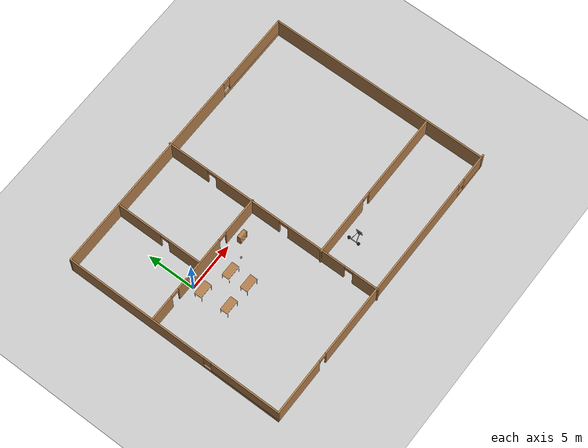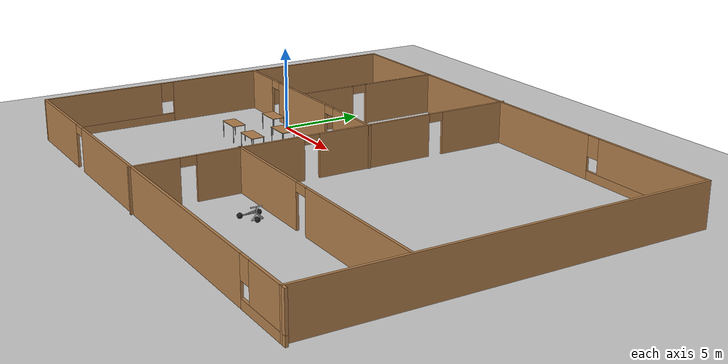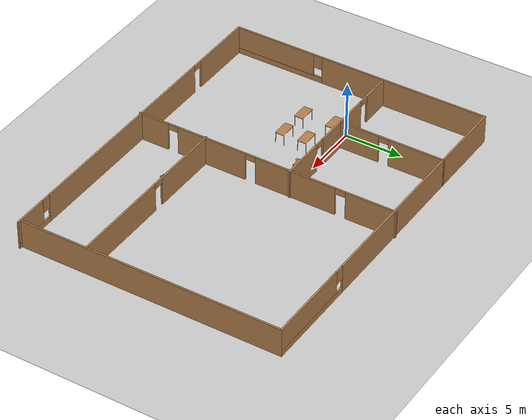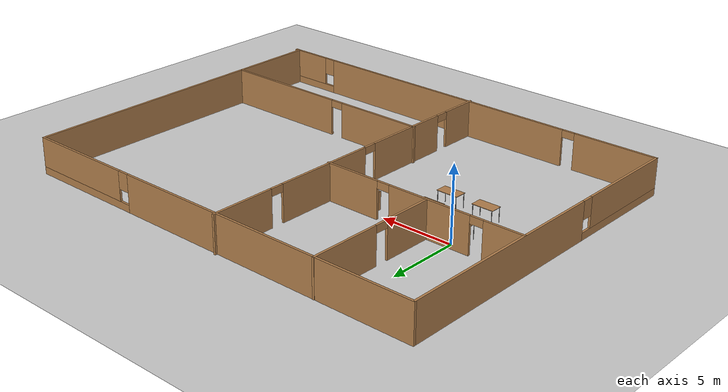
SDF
<sdf version="1.6">
 <world name="default">
  <plugin name="welcome" filename="libwelcome.so"/>
  <light name="sun" type="directional">
   <pose>0 0 10 0 -0 0</pose>
   <diffuse>0.8 0.8 0.8 1</diffuse>
   <specular>0.2 0.2 0.2 1</specular>
   <attenuation>
    <range>1000</range>
    <constant>0.9</constant>
    <linear>0.01</linear>
    <quadratic>0.001</quadratic>
   </attenuation>
   <direction>-0.5 0.1 -0.9</direction>
  </light>
  <model name="ground_plane">
   <static>1</static>
   <link name="link">
    <collision name="collision">
     <geometry><plane><normal>0 0 1</normal><size>100 100</size></plane></geometry>
     <surface>
      <contact><collide_bitmask>65535</collide_bitmask></contact>
      <friction><ode><mu>100</mu><mu2>50</mu2></ode></friction>
     </surface>
    </collision>
    <visual name="visual">
     <cast_shadows>0</cast_shadows>
     <geometry><plane><normal>0 0 1</normal><size>100 100</size></plane></geometry>
     <material>
      <script><uri>file://media/materials/scripts/gazebo.material</uri><name>Gazebo/Grey</name></script>
     </material>
    </visual>
   </link>
  </model>
  <gravity>0 0 -9.8</gravity>
  <magnetic_field>6e-06 2.3e-05 -4.2e-05</magnetic_field>
  <atmosphere type="adiabatic"/>
  <physics name="default_physics" default="0" type="ode">
   <max_step_size>0.001</max_step_size>
   <real_time_factor>1</real_time_factor>
   <real_time_update_rate>1000</real_time_update_rate>
  </physics>
  <scene><ambient>0.4 0.4 0.4 1</ambient><background>0.7 0.7 0.7 1</background><shadows>1</shadows></scene>
  <spherical_coordinates>
   <surface_model>EARTH_WGS84</surface_model>
   <latitude_deg>0</latitude_deg>
   <longitude_deg>0</longitude_deg>
   <elevation>0</elevation>
   <heading_deg>0</heading_deg>
  </spherical_coordinates>
  <model name="my_building_1">
   <pose>9.97426 -1.91633 0 0 -0 0</pose>
   <link name="Wall_1">
    <pose>-0.124999 11.4186 0 0 -0 0</pose>
    <visual name="Wall_1_Visual_0">
     <pose>-4.16407 0 1.25 0 -0 0</pose>
     <geometry><box><size>21.6719 0.15 2.5</size></box></geometry>
     <material>
      <script><uri>file://media/materials/scripts/gazebo.material</uri><name>Gazebo/Wood</name></script>
      <ambient>1 1 1 1</ambient>
     </material>
     <meta><layer>0</layer></meta>
    </visual>
    <collision name="Wall_1_Collision_0">
     <geometry><box><size>21.6719 0.15 2.5</size></box></geometry>
     <pose>-4.16407 0 1.25 0 -0 0</pose>
    </collision>
    <visual name="Wall_1_Visual_1">
     <pose>10.8359 0 0.25 0 -0 0</pose>
     <geometry><box><size>8.32814 0.15 0.5</size></box></geometry>
     <material>
      <script><uri>file://media/materials/scripts/gazebo.material</uri><name>Gazebo/Wood</name></script>
      <ambient>1 1 1 1</ambient>
     </material>
     <meta><layer>0</layer></meta>
    </visual>
    <collision name="Wall_1_Collision_1">
     <geometry><box><size>8.32814 0.15 0.5</size></box></geometry>
     <pose>10.8359 0 0.25 0 -0 0</pose>
    </collision>
    <visual name="Wall_1_Visual_2">
     <pose>11.2359 0 1.5 0 -0 0</pose>
     <geometry><box><size>7.52814 0.15 2</size></box></geometry>
     <material>
      <script><uri>file://media/materials/scripts/gazebo.material</uri><name>Gazebo/Wood</name></script>
      <ambient>1 1 1 1</ambient>
     </material>
     <meta><layer>0</layer></meta>
    </visual>
    <collision name="Wall_1_Collision_2">
     <geometry><box><size>7.52814 0.15 2</size></box></geometry>
     <pose>11.2359 0 1.5 0 -0 0</pose>
    </collision>
    <visual name="Wall_1_Visual_3">
     <pose>7.07186 0 1.9 0 -0 0</pose>
     <geometry><box><size>0.8 0.15 1.2</size></box></geometry>
     <material>
      <script><uri>file://media/materials/scripts/gazebo.material</uri><name>Gazebo/Wood</name></script>
      <ambient>1 1 1 1</ambient>
     </material>
     <meta><layer>0</layer></meta>
    </visual>
    <collision name="Wall_1_Collision_3">
     <geometry><box><size>0.8 0.15 1.2</size></box></geometry>
     <pose>7.07186 0 1.9 0 -0 0</pose>
    </collision>
   </link>
   <link name="Wall_11">
    <pose>-7.99391 2.26804 0 0 -0 0</pose>
    <visual name="Wall_11_Visual_0">
     <pose>-5.7544 0 1.25 0 -0 0</pose>
     <geometry><box><size>2.74119 0.15 2.5</size></box></geometry>
     <material>
      <script><uri>file://media/materials/scripts/gazebo.material</uri><name>Gazebo/Wood</name></script>
      <ambient>1 1 1 1</ambient>
     </material>
     <meta><layer>0</layer></meta>
    </visual>
    <collision name="Wall_11_Collision_0">
     <geometry><box><size>2.74119 0.15 2.5</size></box></geometry>
     <pose>-5.7544 0 1.25 0 -0 0</pose>
    </collision>
    <visual name="Wall_11_Visual_1">
     <pose>-0.602997 0 1.25 0 -0 0</pose>
     <geometry><box><size>5.76161 0.15 2.5</size></box></geometry>
     <material>
      <script><uri>file://media/materials/scripts/gazebo.material</uri><name>Gazebo/Wood</name></script>
      <ambient>1 1 1 1</ambient>
     </material>
     <meta><layer>0</layer></meta>
    </visual>
    <collision name="Wall_11_Collision_1">
     <geometry><box><size>5.76161 0.15 2.5</size></box></geometry>
     <pose>-0.602997 0 1.25 0 -0 0</pose>
    </collision>
    <visual name="Wall_11_Visual_2">
     <pose>5.1514 0 1.25 0 -0 0</pose>
     <geometry><box><size>3.94719 0.15 2.5</size></box></geometry>
     <material>
      <script><uri>file://media/materials/scripts/gazebo.material</uri><name>Gazebo/Wood</name></script>
      <ambient>1 1 1 1</ambient>
     </material>
     <meta><layer>0</layer></meta>
    </visual>
    <collision name="Wall_11_Collision_2">
     <geometry><box><size>3.94719 0.15 2.5</size></box></geometry>
     <pose>5.1514 0 1.25 0 -0 0</pose>
    </collision>
    <visual name="Wall_11_Visual_3">
     <pose>-3.9338 0 2.25 0 -0 0</pose>
     <geometry><box><size>0.9 0.15 0.5</size></box></geometry>
     <material>
      <script><uri>file://media/materials/scripts/gazebo.material</uri><name>Gazebo/Wood</name></script>
      <ambient>1 1 1 1</ambient>
     </material>
     <meta><layer>0</layer></meta>
    </visual>
    <collision name="Wall_11_Collision_3">
     <geometry><box><size>0.9 0.15 0.5</size></box></geometry>
     <pose>-3.9338 0 2.25 0 -0 0</pose>
    </collision>
    <visual name="Wall_11_Visual_4">
     <pose>2.72781 0 2.25 0 -0 0</pose>
     <geometry><box><size>0.9 0.15 0.5</size></box></geometry>
     <material>
      <script><uri>file://media/materials/scripts/gazebo.material</uri><name>Gazebo/Wood</name></script>
      <ambient>1 1 1 1</ambient>
     </material>
     <meta><layer>0</layer></meta>
    </visual>
    <collision name="Wall_11_Collision_4">
     <geometry><box><size>0.9 0.15 0.5</size></box></geometry>
     <pose>2.72781 0 2.25 0 -0 0</pose>
    </collision>
   </link>
   <link name="Wall_13">
    <pose>-8.44665 6.88983 0 0 0 -1.5708</pose>
    <visual name="Wall_13_Visual_0">
     <pose>-2.18561 0 1.25 0 -0 0</pose>
     <geometry><box><size>4.87878 0.15 2.5</size></box></geometry>
     <material>
      <script><uri>file://media/materials/scripts/gazebo.material</uri><name>Gazebo/Wood</name></script>
      <ambient>1 1 1 1</ambient>
     </material>
     <meta><layer>0</layer></meta>
    </visual>
    <collision name="Wall_13_Collision_0">
     <geometry><box><size>4.87878 0.15 2.5</size></box></geometry>
     <pose>-2.18561 0 1.25 0 -0 0</pose>
    </collision>
    <visual name="Wall_13_Visual_1">
     <pose>2.88939 0 1.25 0 -0 0</pose>
     <geometry><box><size>3.47122 0.15 2.5</size></box></geometry>
     <material>
      <script><uri>file://media/materials/scripts/gazebo.material</uri><name>Gazebo/Wood</name></script>
      <ambient>1 1 1 1</ambient>
     </material>
     <meta><layer>0</layer></meta>
    </visual>
    <collision name="Wall_13_Collision_1">
     <geometry><box><size>3.47122 0.15 2.5</size></box></geometry>
     <pose>2.88939 0 1.25 0 -0 0</pose>
    </collision>
    <visual name="Wall_13_Visual_2">
     <pose>0.703778 0 2.25 0 -0 0</pose>
     <geometry><box><size>0.9 0.15 0.5</size></box></geometry>
     <material>
      <script><uri>file://media/materials/scripts/gazebo.material</uri><name>Gazebo/Wood</name></script>
      <ambient>1 1 1 1</ambient>
     </material>
     <meta><layer>0</layer></meta>
    </visual>
    <collision name="Wall_13_Collision_2">
     <geometry><box><size>0.9 0.15 0.5</size></box></geometry>
     <pose>0.703778 0 2.25 0 -0 0</pose>
    </collision>
   </link>
   <link name="Wall_19">
    <pose>6.78661 -5.46813 0 0 -0 0</pose>
    <visual name="Wall_19_Visual_0">
     <pose>-4.88505 0 1.25 0 -0 0</pose>
     <geometry><box><size>6.22989 0.15 2.5</size></box></geometry>
     <material>
      <script><uri>file://media/materials/scripts/gazebo.material</uri><name>Gazebo/Wood</name></script>
      <ambient>1 1 1 1</ambient>
     </material>
     <meta><layer>0</layer></meta>
    </visual>
    <collision name="Wall_19_Collision_0">
     <geometry><box><size>6.22989 0.15 2.5</size></box></geometry>
     <pose>-4.88505 0 1.25 0 -0 0</pose>
    </collision>
    <visual name="Wall_19_Visual_1">
     <pose>3.56495 0 1.25 0 -0 0</pose>
     <geometry><box><size>8.87011 0.15 2.5</size></box></geometry>
     <material>
      <script><uri>file://media/materials/scripts/gazebo.material</uri><name>Gazebo/Wood</name></script>
      <ambient>1 1 1 1</ambient>
     </material>
     <meta><layer>0</layer></meta>
    </visual>
    <collision name="Wall_19_Collision_1">
     <geometry><box><size>8.87011 0.15 2.5</size></box></geometry>
     <pose>3.56495 0 1.25 0 -0 0</pose>
    </collision>
    <visual name="Wall_19_Visual_2">
     <pose>-1.32011 0 2.25 0 -0 0</pose>
     <geometry><box><size>0.9 0.15 0.5</size></box></geometry>
     <material>
      <script><uri>file://media/materials/scripts/gazebo.material</uri><name>Gazebo/Wood</name></script>
      <ambient>1 1 1 1</ambient>
     </material>
     <meta><layer>0</layer></meta>
    </visual>
    <collision name="Wall_19_Collision_2">
     <geometry><box><size>0.9 0.15 0.5</size></box></geometry>
     <pose>-1.32011 0 2.25 0 -0 0</pose>
    </collision>
   </link>
   <link name="Wall_3">
    <pose>-15.05 -0.006449 0 0 0 -1.5708</pose>
    <visual name="Wall_3_Visual_0">
     <pose>-4.05004 0 1.25 0 -0 0</pose>
     <geometry><box><size>14.8999 0.15 2.5</size></box></geometry>
     <material>
      <script><uri>file://media/materials/scripts/gazebo.material</uri><name>Gazebo/Wood</name></script>
      <ambient>1 1 1 1</ambient>
     </material>
     <meta><layer>0</layer></meta>
    </visual>
    <collision name="Wall_3_Collision_0">
     <geometry><box><size>14.8999 0.15 2.5</size></box></geometry>
     <pose>-4.05004 0 1.25 0 -0 0</pose>
    </collision>
    <visual name="Wall_3_Visual_1">
     <pose>7.44996 0 0.25 0 -0 0</pose>
     <geometry><box><size>8.10008 0.15 0.5</size></box></geometry>
     <material>
      <script><uri>file://media/materials/scripts/gazebo.material</uri><name>Gazebo/Wood</name></script>
      <ambient>1 1 1 1</ambient>
     </material>
     <meta><layer>0</layer></meta>
    </visual>
    <collision name="Wall_3_Collision_1">
     <geometry><box><size>8.10008 0.15 0.5</size></box></geometry>
     <pose>7.44996 0 0.25 0 -0 0</pose>
    </collision>
    <visual name="Wall_3_Visual_2">
     <pose>7.84996 0 1.5 0 -0 0</pose>
     <geometry><box><size>7.30008 0.15 2</size></box></geometry>
     <material>
      <script><uri>file://media/materials/scripts/gazebo.material</uri><name>Gazebo/Wood</name></script>
      <ambient>1 1 1 1</ambient>
     </material>
     <meta><layer>0</layer></meta>
    </visual>
    <collision name="Wall_3_Collision_2">
     <geometry><box><size>7.30008 0.15 2</size></box></geometry>
     <pose>7.84996 0 1.5 0 -0 0</pose>
    </collision>
    <visual name="Wall_3_Visual_3">
     <pose>3.79992 0 1.9 0 -0 0</pose>
     <geometry><box><size>0.8 0.15 1.2</size></box></geometry>
     <material>
      <script><uri>file://media/materials/scripts/gazebo.material</uri><name>Gazebo/Wood</name></script>
      <ambient>1 1 1 1</ambient>
     </material>
     <meta><layer>0</layer></meta>
    </visual>
    <collision name="Wall_3_Collision_3">
     <geometry><box><size>0.8 0.15 1.2</size></box></geometry>
     <pose>3.79992 0 1.9 0 -0 0</pose>
    </collision>
   </link>
   <link name="Wall_5">
    <collision name="Wall_5_Collision">
     <geometry><box><size>23 0.15 2.5</size></box></geometry>
     <pose>0 0 1.25 0 -0 0</pose>
    </collision>
    <visual name="Wall_5_Visual">
     <pose>0 0 1.25 0 -0 0</pose>
     <geometry><box><size>23 0.15 2.5</size></box></geometry>
     <material>
      <script><uri>file://media/materials/scripts/gazebo.material</uri><name>Gazebo/Wood</name></script>
      <ambient>1 1 1 1</ambient>
     </material>
     <meta><layer>0</layer></meta>
    </visual>
    <pose>14.8 -0.006449 0 0 0 -1.5708</pose>
   </link>
   <link name="Wall_7">
    <pose>1e-06 -11.4314 0 0 -0 0</pose>
    <visual name="Wall_7_Visual_0">
     <pose>-12.2247 0 1.25 0 -0 0</pose>
     <geometry><box><size>5.80053 0.15 2.5</size></box></geometry>
     <material>
      <script><uri>file://media/materials/scripts/gazebo.material</uri><name>Gazebo/Wood</name></script>
      <ambient>1 1 1 1</ambient>
     </material>
     <meta><layer>0</layer></meta>
    </visual>
    <collision name="Wall_7_Collision_0">
     <geometry><box><size>5.80053 0.15 2.5</size></box></geometry>
     <pose>-12.2247 0 1.25 0 -0 0</pose>
    </collision>
    <visual name="Wall_7_Visual_1">
     <pose>1.42052 0 1.25 0 -0 0</pose>
     <geometry><box><size>19.69 0.15 2.5</size></box></geometry>
     <material>
      <script><uri>file://media/materials/scripts/gazebo.material</uri><name>Gazebo/Wood</name></script>
      <ambient>1 1 1 1</ambient>
     </material>
     <meta><layer>0</layer></meta>
    </visual>
    <collision name="Wall_7_Collision_1">
     <geometry><box><size>19.69 0.15 2.5</size></box></geometry>
     <pose>1.42052 0 1.25 0 -0 0</pose>
    </collision>
    <visual name="Wall_7_Visual_2">
     <pose>13.1953 0 0.25 0 -0 0</pose>
     <geometry><box><size>3.85949 0.15 0.5</size></box></geometry>
     <material>
      <script><uri>file://media/materials/scripts/gazebo.material</uri><name>Gazebo/Wood</name></script>
      <ambient>1 1 1 1</ambient>
     </material>
     <meta><layer>0</layer></meta>
    </visual>
    <collision name="Wall_7_Collision_2">
     <geometry><box><size>3.85949 0.15 0.5</size></box></geometry>
     <pose>13.1953 0 0.25 0 -0 0</pose>
    </collision>
    <visual name="Wall_7_Visual_3">
     <pose>13.5953 0 1.5 0 -0 0</pose>
     <geometry><box><size>3.05949 0.15 2</size></box></geometry>
     <material>
      <script><uri>file://media/materials/scripts/gazebo.material</uri><name>Gazebo/Wood</name></script>
      <ambient>1 1 1 1</ambient>
     </material>
     <meta><layer>0</layer></meta>
    </visual>
    <collision name="Wall_7_Collision_3">
     <geometry><box><size>3.05949 0.15 2</size></box></geometry>
     <pose>13.5953 0 1.5 0 -0 0</pose>
    </collision>
    <visual name="Wall_7_Visual_4">
     <pose>11.6655 0 1.9 0 -0 0</pose>
     <geometry><box><size>0.8 0.15 1.2</size></box></geometry>
     <material>
      <script><uri>file://media/materials/scripts/gazebo.material</uri><name>Gazebo/Wood</name></script>
      <ambient>1 1 1 1</ambient>
     </material>
     <meta><layer>0</layer></meta>
    </visual>
    <collision name="Wall_7_Collision_4">
     <geometry><box><size>0.8 0.15 1.2</size></box></geometry>
     <pose>11.6655 0 1.9 0 -0 0</pose>
    </collision>
    <visual name="Wall_7_Visual_5">
     <pose>-8.87447 0 2.25 0 -0 0</pose>
     <geometry><box><size>0.9 0.15 0.5</size></box></geometry>
     <material>
      <script><uri>file://media/materials/scripts/gazebo.material</uri><name>Gazebo/Wood</name></script>
      <ambient>1 1 1 1</ambient>
     </material>
     <meta><layer>0</layer></meta>
    </visual>
    <collision name="Wall_7_Collision_5">
     <geometry><box><size>0.9 0.15 0.5</size></box></geometry>
     <pose>-8.87447 0 2.25 0 -0 0</pose>
    </collision>
   </link>
   <link name="Wall_9">
    <pose>-1.03553 0 0 0 0 -1.5708</pose>
    <visual name="Wall_9_Visual_0">
     <pose>-9.40809 0 1.25 0 -0 0</pose>
     <geometry><box><size>4.43381 0.15 2.5</size></box></geometry>
     <material>
      <script><uri>file://media/materials/scripts/gazebo.material</uri><name>Gazebo/Wood</name></script>
      <ambient>1 1 1 1</ambient>
     </material>
     <meta><layer>0</layer></meta>
    </visual>
    <collision name="Wall_9_Collision_0">
     <geometry><box><size>4.43381 0.15 2.5</size></box></geometry>
     <pose>-9.40809 0 1.25 0 -0 0</pose>
    </collision>
    <visual name="Wall_9_Visual_1">
     <pose>-2.71646 0 1.25 0 -0 0</pose>
     <geometry><box><size>7.14945 0.15 2.5</size></box></geometry>
     <material>
      <script><uri>file://media/materials/scripts/gazebo.material</uri><name>Gazebo/Wood</name></script>
      <ambient>1 1 1 1</ambient>
     </material>
     <meta><layer>0</layer></meta>
    </visual>
    <collision name="Wall_9_Collision_1">
     <geometry><box><size>7.14945 0.15 2.5</size></box></geometry>
     <pose>-2.71646 0 1.25 0 -0 0</pose>
    </collision>
    <visual name="Wall_9_Visual_2">
     <pose>4.87038 0 1.25 0 -0 0</pose>
     <geometry><box><size>6.22423 0.15 2.5</size></box></geometry>
     <material>
      <script><uri>file://media/materials/scripts/gazebo.material</uri><name>Gazebo/Wood</name></script>
      <ambient>1 1 1 1</ambient>
     </material>
     <meta><layer>0</layer></meta>
    </visual>
    <collision name="Wall_9_Collision_2">
     <geometry><box><size>6.22423 0.15 2.5</size></box></geometry>
     <pose>4.87038 0 1.25 0 -0 0</pose>
    </collision>
    <visual name="Wall_9_Visual_3">
     <pose>10.2537 0 1.25 0 -0 0</pose>
     <geometry><box><size>2.74251 0.15 2.5</size></box></geometry>
     <material>
      <script><uri>file://media/materials/scripts/gazebo.material</uri><name>Gazebo/Wood</name></script>
      <ambient>1 1 1 1</ambient>
     </material>
     <meta><layer>0</layer></meta>
    </visual>
    <collision name="Wall_9_Collision_3">
     <geometry><box><size>2.74251 0.15 2.5</size></box></geometry>
     <pose>10.2537 0 1.25 0 -0 0</pose>
    </collision>
    <visual name="Wall_9_Visual_4">
     <pose>-6.74119 0 2.25 0 -0 0</pose>
     <geometry><box><size>0.9 0.15 0.5</size></box></geometry>
     <material>
      <script><uri>file://media/materials/scripts/gazebo.material</uri><name>Gazebo/Wood</name></script>
      <ambient>1 1 1 1</ambient>
     </material>
     <meta><layer>0</layer></meta>
    </visual>
    <collision name="Wall_9_Collision_4">
     <geometry><box><size>0.9 0.15 0.5</size></box></geometry>
     <pose>-6.74119 0 2.25 0 -0 0</pose>
    </collision>
    <visual name="Wall_9_Visual_5">
     <pose>1.30826 0 2.25 0 -0 0</pose>
     <geometry><box><size>0.9 0.15 0.5</size></box></geometry>
     <material>
      <script><uri>file://media/materials/scripts/gazebo.material</uri><name>Gazebo/Wood</name></script>
      <ambient>1 1 1 1</ambient>
     </material>
     <meta><layer>0</layer></meta>
    </visual>
    <collision name="Wall_9_Collision_5">
     <geometry><box><size>0.9 0.15 0.5</size></box></geometry>
     <pose>1.30826 0 2.25 0 -0 0</pose>
    </collision>
    <visual name="Wall_9_Visual_6">
     <pose>8.43249 0 2.25 0 -0 0</pose>
     <geometry><box><size>0.9 0.15 0.5</size></box></geometry>
     <material>
      <script><uri>file://media/materials/scripts/gazebo.material</uri><name>Gazebo/Wood</name></script>
      <ambient>1 1 1 1</ambient>
     </material>
     <meta><layer>0</layer></meta>
    </visual>
    <collision name="Wall_9_Collision_6">
     <geometry><box><size>0.9 0.15 0.5</size></box></geometry>
     <pose>8.43249 0 2.25 0 -0 0</pose>
    </collision>
   </link>
   <static>1</static>
  </model>
  <model name="table">
   <static>1</static>
   <link name="link">
    <collision name="surface">
     <pose>0 0 1 0 -0 0</pose>
     <geometry><box><size>1.5 0.8 0.03</size></box></geometry>
     <surface><friction><ode><mu>0.6</mu><mu2>0.6</mu2></ode></friction></surface>
    </collision>
    <visual name="visual1">
     <pose>0 0 1 0 -0 0</pose>
     <geometry><box><size>1.5 0.8 0.03</size></box></geometry>
     <material>
      <script><uri>file://media/materials/scripts/gazebo.material</uri><name>Gazebo/Wood</name></script>
     </material>
    </visual>
    <collision name="front_left_leg">
     <pose>0.68 0.38 0.5 0 -0 0</pose>
     <geometry><cylinder><radius>0.02</radius><length>1</length></cylinder></geometry>
    </collision>
    <visual name="front_left_leg">
     <pose>0.68 0.38 0.5 0 -0 0</pose>
     <geometry><cylinder><radius>0.02</radius><length>1</length></cylinder></geometry>
     <material>
      <script><uri>file://media/materials/scripts/gazebo.material</uri><name>Gazebo/Grey</name></script>
     </material>
    </visual>
    <collision name="front_right_leg">
     <pose>0.68 -0.38 0.5 0 -0 0</pose>
     <geometry><cylinder><radius>0.02</radius><length>1</length></cylinder></geometry>
    </collision>
    <visual name="front_right_leg">
     <pose>0.68 -0.38 0.5 0 -0 0</pose>
     <geometry><cylinder><radius>0.02</radius><length>1</length></cylinder></geometry>
     <material>
      <script><uri>file://media/materials/scripts/gazebo.material</uri><name>Gazebo/Grey</name></script>
     </material>
    </visual>
    <collision name="back_right_leg">
     <pose>-0.68 -0.38 0.5 0 -0 0</pose>
     <geometry><cylinder><radius>0.02</radius><length>1</length></cylinder></geometry>
    </collision>
    <visual name="back_right_leg">
     <pose>-0.68 -0.38 0.5 0 -0 0</pose>
     <geometry><cylinder><radius>0.02</radius><length>1</length></cylinder></geometry>
     <material>
      <script><uri>file://media/materials/scripts/gazebo.material</uri><name>Gazebo/Grey</name></script>
     </material>
    </visual>
    <collision name="back_left_leg">
     <pose>-0.68 0.38 0.5 0 -0 0</pose>
     <geometry><cylinder><radius>0.02</radius><length>1</length></cylinder></geometry>
    </collision>
    <visual name="back_left_leg">
     <pose>-0.68 0.38 0.5 0 -0 0</pose>
     <geometry><cylinder><radius>0.02</radius><length>1</length></cylinder></geometry>
     <material>
      <script><uri>file://media/materials/scripts/gazebo.material</uri><name>Gazebo/Grey</name></script>
     </material>
    </visual>
   </link>
   <pose>2.99235 -1.84828 0 0 -0 0</pose>
  </model>
  <model name="table_0">
   <static>1</static>
   <link name="link">
    <collision name="surface">
     <pose>0 0 1 0 -0 0</pose>
     <geometry><box><size>1.5 0.8 0.03</size></box></geometry>
     <surface><friction><ode><mu>0.6</mu><mu2>0.6</mu2></ode></friction></surface>
    </collision>
    <visual name="visual1">
     <pose>0 0 1 0 -0 0</pose>
     <geometry><box><size>1.5 0.8 0.03</size></box></geometry>
     <material>
      <script><uri>file://media/materials/scripts/gazebo.material</uri><name>Gazebo/Wood</name></script>
     </material>
    </visual>
    <collision name="front_left_leg">
     <pose>0.68 0.38 0.5 0 -0 0</pose>
     <geometry><cylinder><radius>0.02</radius><length>1</length></cylinder></geometry>
    </collision>
    <visual name="front_left_leg">
     <pose>0.68 0.38 0.5 0 -0 0</pose>
     <geometry><cylinder><radius>0.02</radius><length>1</length></cylinder></geometry>
     <material>
      <script><uri>file://media/materials/scripts/gazebo.material</uri><name>Gazebo/Grey</name></script>
     </material>
    </visual>
    <collision name="front_right_leg">
     <pose>0.68 -0.38 0.5 0 -0 0</pose>
     <geometry><cylinder><radius>0.02</radius><length>1</length></cylinder></geometry>
    </collision>
    <visual name="front_right_leg">
     <pose>0.68 -0.38 0.5 0 -0 0</pose>
     <geometry><cylinder><radius>0.02</radius><length>1</length></cylinder></geometry>
     <material>
      <script><uri>file://media/materials/scripts/gazebo.material</uri><name>Gazebo/Grey</name></script>
     </material>
    </visual>
    <collision name="back_right_leg">
     <pose>-0.68 -0.38 0.5 0 -0 0</pose>
     <geometry><cylinder><radius>0.02</radius><length>1</length></cylinder></geometry>
    </collision>
    <visual name="back_right_leg">
     <pose>-0.68 -0.38 0.5 0 -0 0</pose>
     <geometry><cylinder><radius>0.02</radius><length>1</length></cylinder></geometry>
     <material>
      <script><uri>file://media/materials/scripts/gazebo.material</uri><name>Gazebo/Grey</name></script>
     </material>
    </visual>
    <collision name="back_left_leg">
     <pose>-0.68 0.38 0.5 0 -0 0</pose>
     <geometry><cylinder><radius>0.02</radius><length>1</length></cylinder></geometry>
    </collision>
    <visual name="back_left_leg">
     <pose>-0.68 0.38 0.5 0 -0 0</pose>
     <geometry><cylinder><radius>0.02</radius><length>1</length></cylinder></geometry>
     <material>
      <script><uri>file://media/materials/scripts/gazebo.material</uri><name>Gazebo/Grey</name></script>
     </material>
    </visual>
   </link>
   <pose>3.04172 -3.8502 0 0 -0 0</pose>
  </model>
  <model name="table_1">
   <static>1</static>
   <link name="link">
    <collision name="surface">
     <pose>0 0 1 0 -0 0</pose>
     <geometry><box><size>1.5 0.8 0.03</size></box></geometry>
     <surface><friction><ode><mu>0.6</mu><mu2>0.6</mu2></ode></friction></surface>
    </collision>
    <visual name="visual1">
     <pose>0 0 1 0 -0 0</pose>
     <geometry><box><size>1.5 0.8 0.03</size></box></geometry>
     <material>
      <script><uri>file://media/materials/scripts/gazebo.material</uri><name>Gazebo/Wood</name></script>
     </material>
    </visual>
    <collision name="front_left_leg">
     <pose>0.68 0.38 0.5 0 -0 0</pose>
     <geometry><cylinder><radius>0.02</radius><length>1</length></cylinder></geometry>
    </collision>
    <visual name="front_left_leg">
     <pose>0.68 0.38 0.5 0 -0 0</pose>
     <geometry><cylinder><radius>0.02</radius><length>1</length></cylinder></geometry>
     <material>
      <script><uri>file://media/materials/scripts/gazebo.material</uri><name>Gazebo/Grey</name></script>
     </material>
    </visual>
    <collision name="front_right_leg">
     <pose>0.68 -0.38 0.5 0 -0 0</pose>
     <geometry><cylinder><radius>0.02</radius><length>1</length></cylinder></geometry>
    </collision>
    <visual name="front_right_leg">
     <pose>0.68 -0.38 0.5 0 -0 0</pose>
     <geometry><cylinder><radius>0.02</radius><length>1</length></cylinder></geometry>
     <material>
      <script><uri>file://media/materials/scripts/gazebo.material</uri><name>Gazebo/Grey</name></script>
     </material>
    </visual>
    <collision name="back_right_leg">
     <pose>-0.68 -0.38 0.5 0 -0 0</pose>
     <geometry><cylinder><radius>0.02</radius><length>1</length></cylinder></geometry>
    </collision>
    <visual name="back_right_leg">
     <pose>-0.68 -0.38 0.5 0 -0 0</pose>
     <geometry><cylinder><radius>0.02</radius><length>1</length></cylinder></geometry>
     <material>
      <script><uri>file://media/materials/scripts/gazebo.material</uri><name>Gazebo/Grey</name></script>
     </material>
    </visual>
    <collision name="back_left_leg">
     <pose>-0.68 0.38 0.5 0 -0 0</pose>
     <geometry><cylinder><radius>0.02</radius><length>1</length></cylinder></geometry>
    </collision>
    <visual name="back_left_leg">
     <pose>-0.68 0.38 0.5 0 -0 0</pose>
     <geometry><cylinder><radius>0.02</radius><length>1</length></cylinder></geometry>
     <material>
      <script><uri>file://media/materials/scripts/gazebo.material</uri><name>Gazebo/Grey</name></script>
     </material>
    </visual>
   </link>
   <pose>0.165477 -1.01282 0 0 -0 0</pose>
  </model>
  <model name="table_2">
   <static>1</static>
   <link name="link">
    <collision name="surface">
     <pose>0 0 1 0 -0 0</pose>
     <geometry><box><size>1.5 0.8 0.03</size></box></geometry>
     <surface><friction><ode><mu>0.6</mu><mu2>0.6</mu2></ode></friction></surface>
    </collision>
    <visual name="visual1">
     <pose>0 0 1 0 -0 0</pose>
     <geometry><box><size>1.5 0.8 0.03</size></box></geometry>
     <material>
      <script><uri>file://media/materials/scripts/gazebo.material</uri><name>Gazebo/Wood</name></script>
     </material>
    </visual>
    <collision name="front_left_leg">
     <pose>0.68 0.38 0.5 0 -0 0</pose>
     <geometry><cylinder><radius>0.02</radius><length>1</length></cylinder></geometry>
    </collision>
    <visual name="front_left_leg">
     <pose>0.68 0.38 0.5 0 -0 0</pose>
     <geometry><cylinder><radius>0.02</radius><length>1</length></cylinder></geometry>
     <material>
      <script><uri>file://media/materials/scripts/gazebo.material</uri><name>Gazebo/Grey</name></script>
     </material>
    </visual>
    <collision name="front_right_leg">
     <pose>0.68 -0.38 0.5 0 -0 0</pose>
     <geometry><cylinder><radius>0.02</radius><length>1</length></cylinder></geometry>
    </collision>
    <visual name="front_right_leg">
     <pose>0.68 -0.38 0.5 0 -0 0</pose>
     <geometry><cylinder><radius>0.02</radius><length>1</length></cylinder></geometry>
     <material>
      <script><uri>file://media/materials/scripts/gazebo.material</uri><name>Gazebo/Grey</name></script>
     </material>
    </visual>
    <collision name="back_right_leg">
     <pose>-0.68 -0.38 0.5 0 -0 0</pose>
     <geometry><cylinder><radius>0.02</radius><length>1</length></cylinder></geometry>
    </collision>
    <visual name="back_right_leg">
     <pose>-0.68 -0.38 0.5 0 -0 0</pose>
     <geometry><cylinder><radius>0.02</radius><length>1</length></cylinder></geometry>
     <material>
      <script><uri>file://media/materials/scripts/gazebo.material</uri><name>Gazebo/Grey</name></script>
     </material>
    </visual>
    <collision name="back_left_leg">
     <pose>-0.68 0.38 0.5 0 -0 0</pose>
     <geometry><cylinder><radius>0.02</radius><length>1</length></cylinder></geometry>
    </collision>
    <visual name="back_left_leg">
     <pose>-0.68 0.38 0.5 0 -0 0</pose>
     <geometry><cylinder><radius>0.02</radius><length>1</length></cylinder></geometry>
     <material>
      <script><uri>file://media/materials/scripts/gazebo.material</uri><name>Gazebo/Grey</name></script>
     </material>
    </visual>
   </link>
   <pose>0.36987 -3.74021 0 0 -0 0</pose>
  </model>
  <model name="bookshelf">
   <static>1</static>
   <link name="link">
    <inertial><mass>1</mass></inertial>
    <collision name="back">
     <pose>0 0.005 0.6 0 -0 0</pose>
     <geometry><box><size>0.9 0.01 1.2</size></box></geometry>
    </collision>
    <visual name="visual1">
     <pose>0 0.005 0.6 0 -0 0</pose>
     <geometry><box><size>0.9 0.01 1.2</size></box></geometry>
     <material>
      <script><uri>file://media/materials/scripts/gazebo.material</uri><name>Gazebo/Wood</name></script>
     </material>
    </visual>
    <collision name="left_side">
     <pose>0.45 -0.195 0.6 0 -0 0</pose>
     <geometry><box><size>0.02 0.4 1.2</size></box></geometry>
    </collision>
    <visual name="visual2">
     <pose>0.45 -0.195 0.6 0 -0 0</pose>
     <geometry><box><size>0.02 0.4 1.2</size></box></geometry>
     <material>
      <script><uri>file://media/materials/scripts/gazebo.material</uri><name>Gazebo/Wood</name></script>
     </material>
    </visual>
    <collision name="right_side">
     <pose>-0.45 -0.195 0.6 0 -0 0</pose>
     <geometry><box><size>0.02 0.4 1.2</size></box></geometry>
    </collision>
    <visual name="visual3">
     <pose>-0.45 -0.195 0.6 0 -0 0</pose>
     <geometry><box><size>0.02 0.4 1.2</size></box></geometry>
     <material>
      <script><uri>file://media/materials/scripts/gazebo.material</uri><name>Gazebo/Wood</name></script>
     </material>
    </visual>
    <collision name="bottom">
     <pose>0 -0.195 0.03 0 -0 0</pose>
     <geometry><box><size>0.88 0.4 0.06</size></box></geometry>
    </collision>
    <visual name="visual4">
     <pose>0 -0.195 0.03 0 -0 0</pose>
     <geometry><box><size>0.88 0.4 0.06</size></box></geometry>
     <material>
      <script><uri>file://media/materials/scripts/gazebo.material</uri><name>Gazebo/Wood</name></script>
     </material>
    </visual>
    <collision name="top">
     <pose>0 -0.195 1.19 0 -0 0</pose>
     <geometry><box><size>0.88 0.4 0.02</size></box></geometry>
    </collision>
    <visual name="visual5">
     <pose>0 -0.195 1.19 0 -0 0</pose>
     <geometry><box><size>0.88 0.4 0.02</size></box></geometry>
     <material>
      <script><uri>file://media/materials/scripts/gazebo.material</uri><name>Gazebo/Wood</name></script>
     </material>
    </visual>
    <collision name="low_shelf">
     <pose>0 -0.195 0.43 0 -0 0</pose>
     <geometry><box><size>0.88 0.4 0.02</size></box></geometry>
    </collision>
    <visual name="visual6">
     <pose>0 -0.195 0.43 0 -0 0</pose>
     <geometry><box><size>0.88 0.4 0.02</size></box></geometry>
     <material>
      <script><uri>file://media/materials/scripts/gazebo.material</uri><name>Gazebo/Wood</name></script>
     </material>
    </visual>
    <collision name="high_shelf">
     <pose>0 -0.195 0.8 0 -0 0</pose>
     <geometry><box><size>0.88 0.4 0.02</size></box></geometry>
    </collision>
    <visual name="visual7">
     <pose>0 -0.195 0.8 0 -0 0</pose>
     <geometry><box><size>0.88 0.4 0.02</size></box></geometry>
     <material>
      <script><uri>file://media/materials/scripts/gazebo.material</uri><name>Gazebo/Wood</name></script>
     </material>
    </visual>
   </link>
   <pose>6.31742 -0.36487 0 0 -0 0</pose>
  </model>
  <model name="trisphere_cycle">
   <link name="frame">
    <pose>-0.408559 0 0.385023 0 -0.522021 0</pose>
    <inertial>
     <mass>10</mass>
     <inertia><ixx>0.228</ixx><iyy>0.743521</iyy><izz>0.965521</izz><ixy>0</ixy><ixz>0</ixz><iyz>0</iyz></inertia>
    </inertial>
    <collision name="axle_collision">
     <pose>-0.471335 0 0 1.5708 -0 0</pose>
     <geometry><cylinder><length>1.03923</length><radius>0.03</radius></cylinder></geometry>
    </collision>
    <visual name="axle_visual">
     <pose>-0.471335 0 0 1.5708 -0 0</pose>
     <geometry><cylinder><length>1.03923</length><radius>0.03</radius></cylinder></geometry>
     <material>
      <script><uri>file://media/materials/scripts/gazebo.material</uri><name>Gazebo/Grey</name></script>
     </material>
    </visual>
    <collision name="frame_left_collision">
     <pose>0 0.171552 0 2.986 1.57079 2.76675</pose>
     <geometry><cylinder><length>1.00317</length><radius>0.03</radius></cylinder></geometry>
    </collision>
    <visual name="frame_left_visual">
     <pose>0 0.171552 0 2.986 1.57079 2.76675</pose>
     <geometry><cylinder><length>1.00317</length><radius>0.03</radius></cylinder></geometry>
     <material>
      <script><uri>file://media/materials/scripts/gazebo.material</uri><name>Gazebo/Grey</name></script>
     </material>
    </visual>
    <collision name="frame_right_collision">
     <pose>0 -0.171552 0 -2.986 1.57079 -2.76675</pose>
     <geometry><cylinder><length>1.00317</length><radius>0.03</radius></cylinder></geometry>
    </collision>
    <visual name="frame_right_visual">
     <pose>0 -0.171552 0 -2.986 1.57079 -2.76675</pose>
     <geometry><cylinder><length>1.00317</length><radius>0.03</radius></cylinder></geometry>
     <material>
      <script><uri>file://media/materials/scripts/gazebo.material</uri><name>Gazebo/Grey</name></script>
     </material>
    </visual>
   </link>
   <link name="fork">
    <pose>0.041441 0 0.385023 0 -0.174533 0</pose>
    <inertial>
     <mass>3</mass>
     <inertia>
      <ixx>0.158203</ixx>
      <iyy>0.0583594</iyy>
      <izz>0.102656</izz>
      <ixy>0</ixy>
      <ixz>0</ixz>
      <iyz>0</iyz>
     </inertia>
    </inertial>
    <collision name="handlebars_collision">
     <pose>0 0 0.397748 1.5708 -0 0</pose>
     <geometry><cylinder><length>0.636396</length><radius>0.0375</radius></cylinder></geometry>
    </collision>
    <visual name="handlebars_visual">
     <pose>0 0 0.397748 1.5708 -0 0</pose>
     <geometry><cylinder><length>0.636396</length><radius>0.0375</radius></cylinder></geometry>
     <material>
      <script><uri>file://media/materials/scripts/gazebo.material</uri><name>Gazebo/Grey</name></script>
     </material>
    </visual>
    <collision name="headtube_collision">
     <pose>0 0 0.238649 0 -0 0</pose>
     <geometry><cylinder><length>0.318198</length><radius>0.0375</radius></cylinder></geometry>
    </collision>
    <visual name="headtube_visual">
     <pose>0 0 0.238649 0 -0 0</pose>
     <geometry><cylinder><length>0.318198</length><radius>0.0375</radius></cylinder></geometry>
     <material>
      <script><uri>file://media/materials/scripts/gazebo.material</uri><name>Gazebo/Grey</name></script>
     </material>
    </visual>
    <collision name="spindle_collision">
     <pose>0 0 -0.238649 1.5708 -0 0</pose>
     <geometry><cylinder><length>0.636396</length><radius>0.015</radius></cylinder></geometry>
    </collision>
    <visual name="spindle_visual">
     <pose>0 0 -0.238649 1.5708 -0 0</pose>
     <geometry><cylinder><length>0.636396</length><radius>0.015</radius></cylinder></geometry>
     <material>
      <script><uri>file://media/materials/scripts/gazebo.material</uri><name>Gazebo/Grey</name></script>
     </material>
    </visual>
    <collision name="fork_left_collision">
     <pose>0 0.159099 -0.07955 0.785398 -0 0</pose>
     <geometry><cylinder><length>0.45</length><radius>0.0375</radius></cylinder></geometry>
    </collision>
    <visual name="fork_left_visual">
     <pose>0 0.159099 -0.07955 0.785398 -0 0</pose>
     <geometry><cylinder><length>0.45</length><radius>0.0375</radius></cylinder></geometry>
     <material>
      <script><uri>file://media/materials/scripts/gazebo.material</uri><name>Gazebo/Grey</name></script>
     </material>
    </visual>
    <collision name="fork_right_collision">
     <pose>0 -0.159099 -0.07955 -0.785398 0 0</pose>
     <geometry><cylinder><length>0.45</length><radius>0.0375</radius></cylinder></geometry>
    </collision>
    <visual name="fork_right_visual">
     <pose>0 -0.159099 -0.07955 -0.785398 0 0</pose>
     <geometry><cylinder><length>0.45</length><radius>0.0375</radius></cylinder></geometry>
     <material>
      <script><uri>file://media/materials/scripts/gazebo.material</uri><name>Gazebo/Grey</name></script>
     </material>
    </visual>
   </link>
   <link name="wheel_front">
    <pose>0.082882 0 0.15 0 -0 0</pose>
    <inertial>
     <mass>0.5</mass>
     <inertia><ixx>0.0045</ixx><iyy>0.0045</iyy><izz>0.0045</izz><ixy>0</ixy><ixz>0</ixz><iyz>0</iyz></inertia>
    </inertial>
    <collision name="collision">
     <geometry><sphere><radius>0.15</radius></sphere></geometry>
     <surface><contact><ode><kp>1e+08</kp><kd>1</kd><min_depth>0.0005</min_depth></ode></contact></surface>
    </collision>
    <visual name="visual">
     <geometry><sphere><radius>0.15</radius></sphere></geometry>
     <material>
      <script><uri>file://media/materials/scripts/gazebo.material</uri><name>Gazebo/Black</name></script>
     </material>
    </visual>
   </link>
   <joint name="wheel_front_steer" type="revolute">
    <parent>frame</parent>
    <child>fork</child>
    <axis>
     <xyz>0 0 1</xyz>
     <limit><lower>-0.959931</lower><upper>0.959931</upper></limit>
     <use_parent_model_frame>0</use_parent_model_frame>
     <dynamics><spring_reference>0</spring_reference><spring_stiffness>0</spring_stiffness></dynamics>
    </axis>
   </joint>
   <joint name="wheel_front_spin" type="revolute">
    <parent>fork</parent>
    <child>wheel_front</child>
    <axis>
     <xyz>0 1 0</xyz>
     <use_parent_model_frame>0</use_parent_model_frame>
     <limit><lower>-1e+16</lower><upper>1e+16</upper></limit>
     <dynamics><spring_reference>0</spring_reference><spring_stiffness>0</spring_stiffness></dynamics>
    </axis>
   </joint>
   <link name="wheel_rear_left">
    <pose>-0.817118 0.519615 0.15 0 -0 0</pose>
    <inertial>
     <mass>0.5</mass>
     <inertia><ixx>0.0045</ixx><iyy>0.0045</iyy><izz>0.0045</izz><ixy>0</ixy><ixz>0</ixz><iyz>0</iyz></inertia>
    </inertial>
    <collision name="collision">
     <geometry><sphere><radius>0.15</radius></sphere></geometry>
     <surface><contact><ode><kp>1e+08</kp><kd>1</kd><min_depth>0.0005</min_depth></ode></contact></surface>
    </collision>
    <visual name="visual">
     <geometry><sphere><radius>0.15</radius></sphere></geometry>
     <material>
      <script><uri>file://media/materials/scripts/gazebo.material</uri><name>Gazebo/Black</name></script>
     </material>
    </visual>
   </link>
   <joint name="wheel_rear_left_spin" type="revolute">
    <parent>frame</parent>
    <child>wheel_rear_left</child>
    <axis>
     <xyz>0 1 0</xyz>
     <use_parent_model_frame>0</use_parent_model_frame>
     <limit><lower>-1e+16</lower><upper>1e+16</upper></limit>
     <dynamics><spring_reference>0</spring_reference><spring_stiffness>0</spring_stiffness></dynamics>
    </axis>
   </joint>
   <link name="wheel_rear_right">
    <pose>-0.817118 -0.519615 0.15 0 -0 0</pose>
    <inertial>
     <mass>0.5</mass>
     <inertia><ixx>0.0045</ixx><iyy>0.0045</iyy><izz>0.0045</izz><ixy>0</ixy><ixz>0</ixz><iyz>0</iyz></inertia>
    </inertial>
    <collision name="collision">
     <geometry><sphere><radius>0.15</radius></sphere></geometry>
     <surface><contact><ode><kp>1e+08</kp><kd>1</kd><min_depth>0.0005</min_depth></ode></contact></surface>
    </collision>
    <visual name="visual">
     <geometry><sphere><radius>0.15</radius></sphere></geometry>
     <material>
      <script><uri>file://media/materials/scripts/gazebo.material</uri><name>Gazebo/Black</name></script>
     </material>
    </visual>
   </link>
   <joint name="wheel_rear_right_spin" type="revolute">
    <parent>frame</parent>
    <child>wheel_rear_right</child>
    <axis>
     <xyz>0 1 0</xyz>
     <use_parent_model_frame>0</use_parent_model_frame>
     <limit><lower>-1e+16</lower><upper>1e+16</upper></limit>
     <dynamics><spring_reference>0</spring_reference><spring_stiffness>0</spring_stiffness></dynamics>
    </axis>
   </joint>
   <pose>13.0021 -8.57668 -0.000501 0 1e-06 -0.000304</pose>
  </model>
  <model name="my_ball">
   <link name="link_0">
    <inertial>
     <mass>1</mass>
     <inertia><ixx>0.1</ixx><ixy>0</ixy><ixz>0</ixz><iyy>0.1</iyy><iyz>0</iyz><izz>0.1</izz></inertia>
    </inertial>
    <visual name="visual">
     <geometry><sphere><radius>0.1</radius></sphere></geometry>
     <material>
      <lighting>1</lighting>
      <script><uri>file://media/materials/scripts/gazebo.material</uri><name>Gazebo/Grey</name></script>
      <shader type="pixel"><normal_map>__default__</normal_map></shader>
      <ambient>1 1 1 1</ambient>
      <diffuse>1 1 1 1</diffuse>
      <specular>1 1 1 1</specular>
      <emissive>1 1 1 1</emissive>
     </material>
    </visual>
    <collision name="collision">
     <geometry><sphere><radius>0.1</radius></sphere></geometry>
     <surface>
      <friction>
       <ode><mu>1</mu><mu2>1</mu2><fdir1>0 0 0</fdir1><slip1>0</slip1><slip2>0</slip2></ode>
       <torsional>
        <coefficient>1</coefficient>
        <patch_radius>0</patch_radius>
        <surface_radius>0</surface_radius>
        <use_patch_radius>1</use_patch_radius>
        <ode><slip>0</slip></ode>
       </torsional>
      </friction>
      <bounce><restitution_coefficient>0</restitution_coefficient><threshold>1e+06</threshold></bounce>
      <contact>
       <collide_without_contact>0</collide_without_contact>
       <collide_without_contact_bitmask>1</collide_without_contact_bitmask>
       <collide_bitmask>1</collide_bitmask>
       <ode>
        <soft_cfm>0</soft_cfm>
        <soft_erp>0.2</soft_erp>
        <kp>1e+13</kp>
        <kd>1</kd>
        <max_vel>0.01</max_vel>
        <min_depth>0</min_depth>
       </ode>
       <bullet>
        <split_impulse>1</split_impulse>
        <split_impulse_penetration_threshold>-0.01</split_impulse_penetration_threshold>
        <soft_cfm>0</soft_cfm>
        <soft_erp>0.2</soft_erp>
        <kp>1e+13</kp>
        <kd>1</kd>
       </bullet>
      </contact>
     </surface>
    </collision>
   </link>
   <static>0</static>
   <pose>4.84138 -1.57903 0.1 0 -0 0</pose>
  </model>
 </world>
</sdf>
